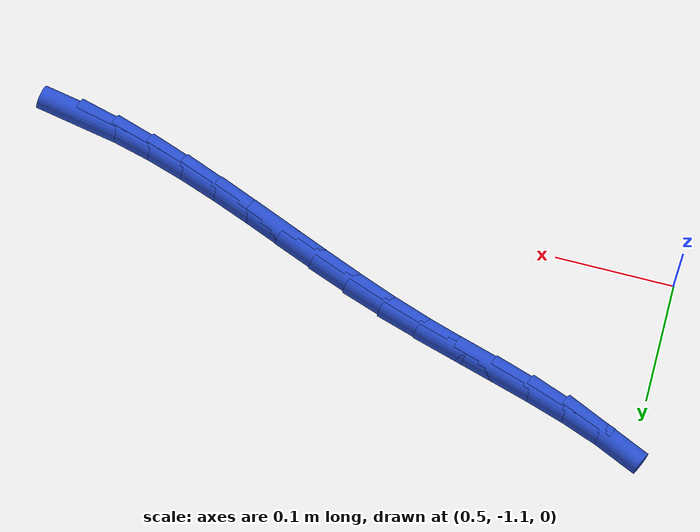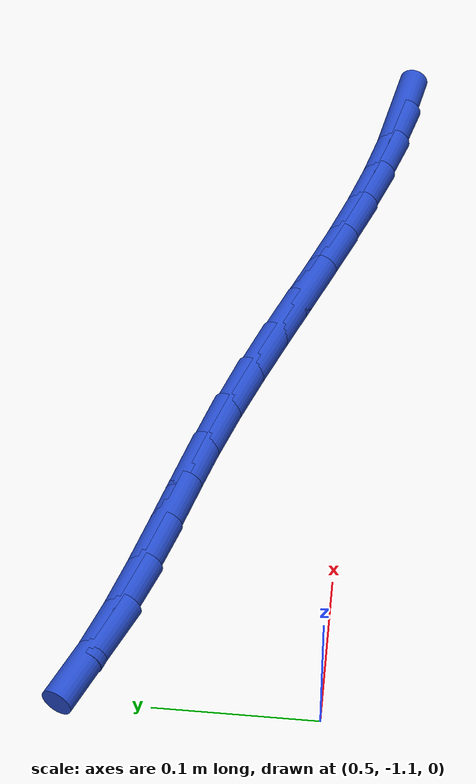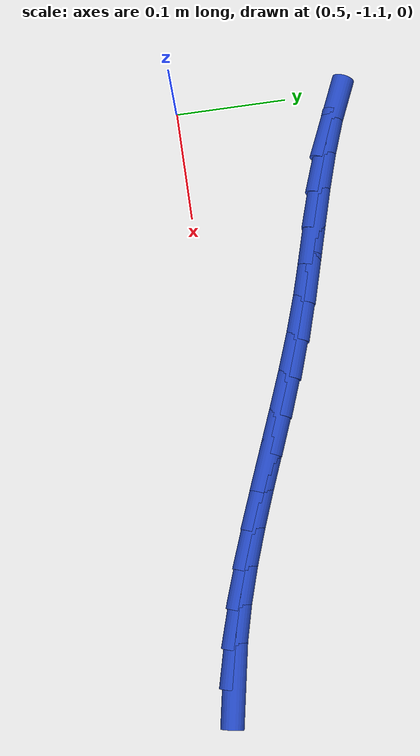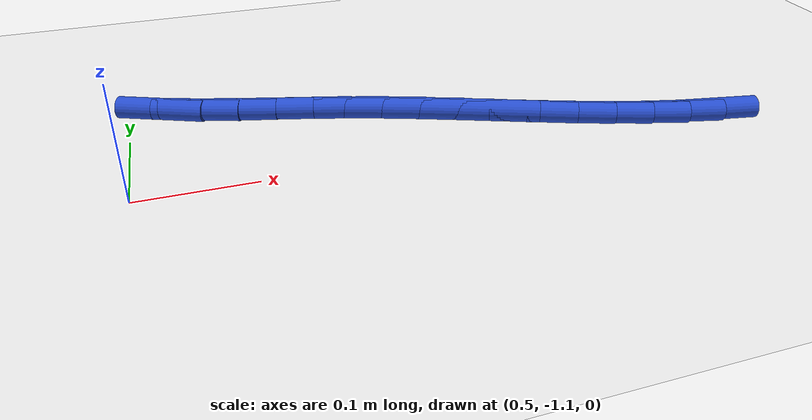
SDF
<sdf version="1.6">
 <world name="default">
  <model name="ground_plane">
   <static>1</static>
   <link name="link">
    <collision name="collision">
     <geometry><plane><normal>0 0 1</normal><size>100 100</size></plane></geometry>
     <surface><friction><ode><mu>100</mu><mu2>50</mu2></ode></friction></surface>
    </collision>
    <visual name="visual">
     <cast_shadows>0</cast_shadows>
     <geometry><plane><normal>0 0 1</normal><size>100 100</size></plane></geometry>
     <material>
      <script><uri>file://media/materials/scripts/gazebo.material</uri><name>Gazebo/WhiteGlow</name></script>
     </material>
    </visual>
   </link>
  </model>
  <model name="line">
   <link name="link_151">
    <pose>1.0077387254881012 -1.1189490024712818 0.01 0 1.57 -0.1852912615380092</pose>
    <collision name="collision">
     <geometry><cylinder><radius>0.01</radius><length>0.08</length></cylinder></geometry>
    </collision>
    <visual name="visual">
     <material>
      <script><name>Gazebo/Blue</name><uri>file://media/materials/scripts/gazebo.material</uri></script>
     </material>
     <geometry><cylinder><radius>0.01</radius><length>0.08</length></cylinder></geometry>
    </visual>
   </link>
   <link name="link_152">
    <pose>0.97622956682961 -1.113042884205062 0.01 0 1.57 -0.24993376060139771</pose>
    <collision name="collision">
     <geometry><cylinder><radius>0.01</radius><length>0.08</length></cylinder></geometry>
    </collision>
    <visual name="visual">
     <material>
      <script><name>Gazebo/Blue</name><uri>file://media/materials/scripts/gazebo.material</uri></script>
     </material>
     <geometry><cylinder><radius>0.01</radius><length>0.08</length></cylinder></geometry>
    </visual>
   </link>
   <link name="link_153">
    <pose>0.9447098807507753 -1.1049968109392931 0.01 0 1.57 -0.30082115489564926</pose>
    <collision name="collision">
     <geometry><cylinder><radius>0.01</radius><length>0.08</length></cylinder></geometry>
    </collision>
    <visual name="visual">
     <material>
      <script><name>Gazebo/Blue</name><uri>file://media/materials/scripts/gazebo.material</uri></script>
     </material>
     <geometry><cylinder><radius>0.01</radius><length>0.08</length></cylinder></geometry>
    </visual>
   </link>
   <link name="link_154">
    <pose>0.9131520606321419 -1.0952064324699011 0.01 0 1.57 -0.3386675863330219</pose>
    <collision name="collision">
     <geometry><cylinder><radius>0.01</radius><length>0.08</length></cylinder></geometry>
    </collision>
    <visual name="visual">
     <material>
      <script><name>Gazebo/Blue</name><uri>file://media/materials/scripts/gazebo.material</uri></script>
     </material>
     <geometry><cylinder><radius>0.01</radius><length>0.08</length></cylinder></geometry>
    </visual>
   </link>
   <link name="link_155">
    <pose>0.8815284998542547 -1.0840673985928129 0.01 0 1.57 -0.36423795892195937</pose>
    <collision name="collision">
     <geometry><cylinder><radius>0.01</radius><length>0.08</length></cylinder></geometry>
    </collision>
    <visual name="visual">
     <material>
      <script><name>Gazebo/Blue</name><uri>file://media/materials/scripts/gazebo.material</uri></script>
     </material>
     <geometry><cylinder><radius>0.01</radius><length>0.08</length></cylinder></geometry>
    </visual>
   </link>
   <link name="link_156">
    <pose>0.8498115917976591 -1.071975359103955 0.01 0 1.57 -0.3781823973366907</pose>
    <collision name="collision">
     <geometry><cylinder><radius>0.01</radius><length>0.08</length></cylinder></geometry>
    </collision>
    <visual name="visual">
     <material>
      <script><name>Gazebo/Blue</name><uri>file://media/materials/scripts/gazebo.material</uri></script>
     </material>
     <geometry><cylinder><radius>0.01</radius><length>0.08</length></cylinder></geometry>
    </visual>
   </link>
   <link name="link_157">
    <pose>0.8179737298429001 -1.0593259637992543 0.01 0 1.57 -0.38095186216001276</pose>
    <collision name="collision">
     <geometry><cylinder><radius>0.01</radius><length>0.08</length></cylinder></geometry>
    </collision>
    <visual name="visual">
     <material>
      <script><name>Gazebo/Blue</name><uri>file://media/materials/scripts/gazebo.material</uri></script>
     </material>
     <geometry><cylinder><radius>0.01</radius><length>0.08</length></cylinder></geometry>
    </visual>
   </link>
   <link name="link_158">
    <pose>0.7859873073705225 -1.0465148624746368 0.01 0 1.57 -0.37276650554103774</pose>
    <collision name="collision">
     <geometry><cylinder><radius>0.01</radius><length>0.08</length></cylinder></geometry>
    </collision>
    <visual name="visual">
     <material>
      <script><name>Gazebo/Blue</name><uri>file://media/materials/scripts/gazebo.material</uri></script>
     </material>
     <geometry><cylinder><radius>0.01</radius><length>0.08</length></cylinder></geometry>
    </visual>
   </link>
   <link name="link_159">
    <pose>0.7538247177610714 -1.0339377049260297 0.01 0 1.57 -0.35361903913253895</pose>
    <collision name="collision">
     <geometry><cylinder><radius>0.01</radius><length>0.08</length></cylinder></geometry>
    </collision>
    <visual name="visual">
     <material>
      <script><name>Gazebo/Blue</name><uri>file://media/materials/scripts/gazebo.material</uri></script>
     </material>
     <geometry><cylinder><radius>0.01</radius><length>0.08</length></cylinder></geometry>
    </visual>
   </link>
   <link name="link_160">
    <pose>0.721458354395092 -1.021990140949359 0.01 0 1.57 -0.32338569253879024</pose>
    <collision name="collision">
     <geometry><cylinder><radius>0.01</radius><length>0.08</length></cylinder></geometry>
    </collision>
    <visual name="visual">
     <material>
      <script><name>Gazebo/Blue</name><uri>file://media/materials/scripts/gazebo.material</uri></script>
     </material>
     <geometry><cylinder><radius>0.01</radius><length>0.08</length></cylinder></geometry>
    </visual>
   </link>
   <link name="link_161">
    <pose>0.6888613838640073 -1.0110652289229025 0.01 0 1.57 -0.29135996144809956</pose>
    <collision name="collision">
     <geometry><cylinder><radius>0.01</radius><length>0.08</length></cylinder></geometry>
    </collision>
    <visual name="visual">
     <material>
      <script><name>Gazebo/Blue</name><uri>file://media/materials/scripts/gazebo.material</uri></script>
     </material>
     <geometry><cylinder><radius>0.01</radius><length>0.08</length></cylinder></geometry>
    </visual>
   </link>
   <link name="link_162">
    <pose>0.6561010885419529 -1.0012405980095824 0.01 0 1.57 -0.27617966843439884</pose>
    <collision name="collision">
     <geometry><cylinder><radius>0.01</radius><length>0.08</length></cylinder></geometry>
    </collision>
    <visual name="visual">
     <material>
      <script><name>Gazebo/Blue</name><uri>file://media/materials/scripts/gazebo.material</uri></script>
     </material>
     <geometry><cylinder><radius>0.01</radius><length>0.08</length></cylinder></geometry>
    </visual>
   </link>
   <link name="link_163">
    <pose>0.6234278381494952 -0.9919802598008529 0.01 0 1.57 -0.2802979988328286</pose>
    <collision name="collision">
     <geometry><cylinder><radius>0.01</radius><length>0.08</length></cylinder></geometry>
    </collision>
    <visual name="visual">
     <material>
      <script><name>Gazebo/Blue</name><uri>file://media/materials/scripts/gazebo.material</uri></script>
     </material>
     <geometry><cylinder><radius>0.01</radius><length>0.08</length></cylinder></geometry>
    </visual>
   </link>
   <link name="link_164">
    <pose>0.5911130799733402 -0.9826775843872698 0.01 0 1.57 -0.30432579609644544</pose>
    <collision name="collision">
     <geometry><cylinder><radius>0.01</radius><length>0.08</length></cylinder></geometry>
    </collision>
    <visual name="visual">
     <material>
      <script><name>Gazebo/Blue</name><uri>file://media/materials/scripts/gazebo.material</uri></script>
     </material>
     <geometry><cylinder><radius>0.01</radius><length>0.08</length></cylinder></geometry>
    </visual>
   </link>
   <link name="link_165">
    <pose>0.559428261300194 -0.9727259418593888 0.01 0 1.57 -0.34915151937318556</pose>
    <collision name="collision">
     <geometry><cylinder><radius>0.01</radius><length>0.08</length></cylinder></geometry>
    </collision>
    <visual name="visual">
     <material>
      <script><name>Gazebo/Blue</name><uri>file://media/materials/scripts/gazebo.material</uri></script>
     </material>
     <geometry><cylinder><radius>0.01</radius><length>0.08</length></cylinder></geometry>
    </visual>
   </link>
   <link name="link_166">
    <pose>0.5286448294167624 -0.961518702307765 0.01 0 1.57 -0.41566077983235045</pose>
    <collision name="collision">
     <geometry><cylinder><radius>0.01</radius><length>0.08</length></cylinder></geometry>
    </collision>
    <visual name="visual">
     <material>
      <script><name>Gazebo/Blue</name><uri>file://media/materials/scripts/gazebo.material</uri></script>
     </material>
     <geometry><cylinder><radius>0.01</radius><length>0.08</length></cylinder></geometry>
    </visual>
   </link>
  </model>
 </world>
</sdf>
